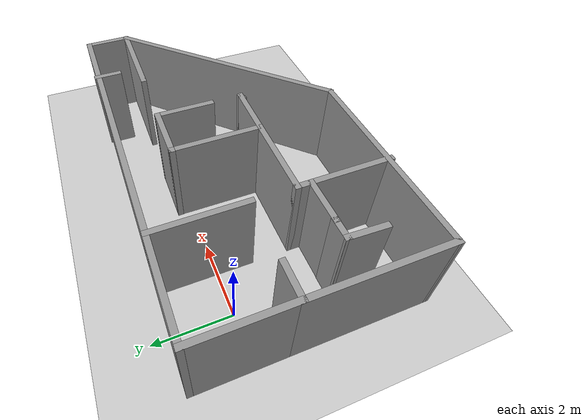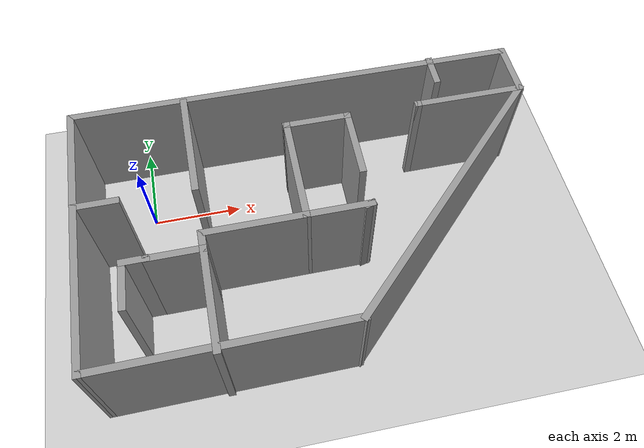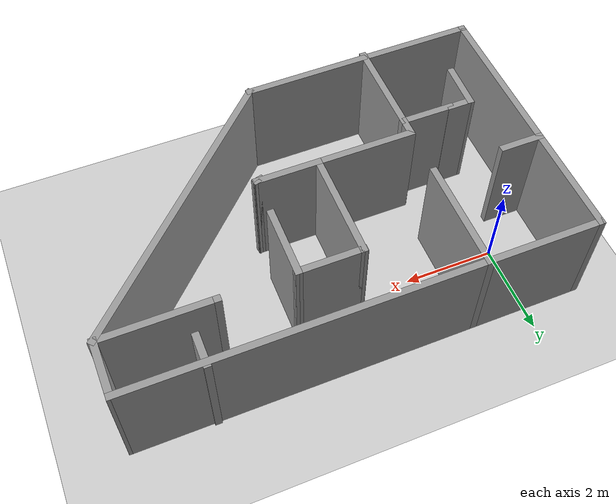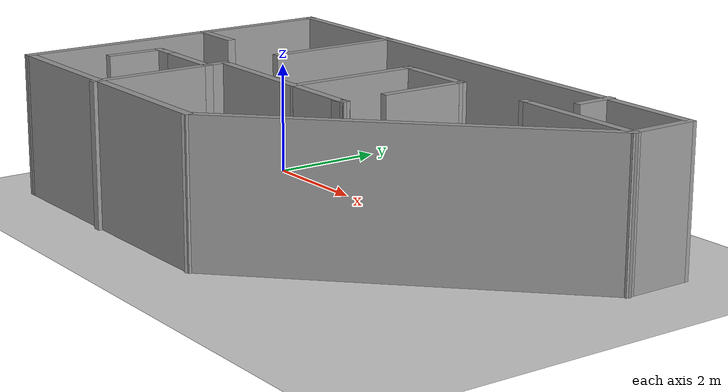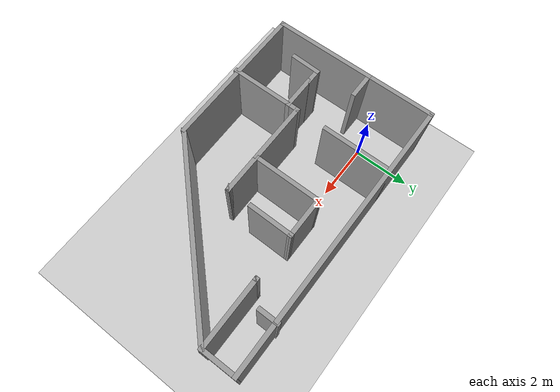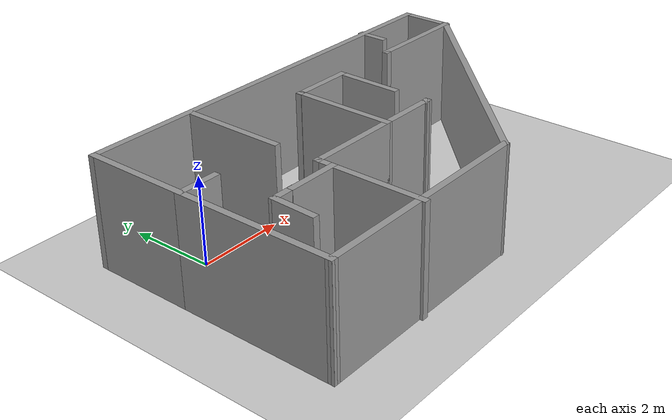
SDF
<sdf version="1.6">
 <world name="default">
  <light name="sun" type="directional">
   <pose>0 0 10 0 -0 0</pose>
   <diffuse>0.8 0.8 0.8 1</diffuse>
   <specular>0.2 0.2 0.2 1</specular>
   <attenuation>
    <range>1000</range>
    <constant>0.9</constant>
    <linear>0.01</linear>
    <quadratic>0.001</quadratic>
   </attenuation>
   <direction>-0.5 0.1 -0.9</direction>
  </light>
  <model name="ground_plane">
   <static>1</static>
   <link name="link">
    <collision name="collision">
     <geometry><plane><normal>0 0 1</normal><size>100 100</size></plane></geometry>
     <surface>
      <contact><collide_bitmask>65535</collide_bitmask></contact>
      <friction><ode><mu>100</mu><mu2>50</mu2></ode></friction>
     </surface>
    </collision>
    <visual name="visual">
     <cast_shadows>0</cast_shadows>
     <geometry><plane><normal>0 0 1</normal><size>100 100</size></plane></geometry>
     <material>
      <script><uri>file://media/materials/scripts/gazebo.material</uri><name>Gazebo/Grey</name></script>
     </material>
    </visual>
   </link>
  </model>
  <gravity>0 0 -9.8</gravity>
  <magnetic_field>6e-06 2.3e-05 -4.2e-05</magnetic_field>
  <atmosphere type="adiabatic"/>
  <physics name="default_physics" default="0" type="ode">
   <max_step_size>0.001</max_step_size>
   <real_time_factor>1</real_time_factor>
   <real_time_update_rate>1000</real_time_update_rate>
  </physics>
  <scene><ambient>0.4 0.4 0.4 1</ambient><background>0.7 0.7 0.7 1</background><shadows>1</shadows></scene>
  <audio><device>default</device></audio>
  <spherical_coordinates>
   <surface_model>EARTH_WGS84</surface_model>
   <latitude_deg>0</latitude_deg>
   <longitude_deg>0</longitude_deg>
   <elevation>0</elevation>
   <heading_deg>0</heading_deg>
  </spherical_coordinates>
  <model name="world11">
   <pose>3.70114 -1.46071 0 0 -0 0</pose>
   <link name="Wall_10">
    <collision name="Wall_10_Collision">
     <geometry><box><size>3.65 0.15 2.5</size></box></geometry>
     <pose>0 0 1.25 0 -0 0</pose>
    </collision>
    <visual name="Wall_10_Visual">
     <pose>0 0 1.25 0 -0 0</pose>
     <geometry><box><size>3.65 0.15 2.5</size></box></geometry>
     <material>
      <script><uri>file://media/materials/scripts/gazebo.material</uri><name>Gazebo/Grey</name></script>
      <ambient>1 1 1 1</ambient>
     </material>
     <meta><layer>0</layer></meta>
    </visual>
    <pose>-4.94506 -1.1719 0 0 -0 1.5708</pose>
   </link>
   <link name="Wall_11">
    <collision name="Wall_11_Collision">
     <geometry><box><size>1 0.15 2.5</size></box></geometry>
     <pose>0 0 1.25 0 -0 0</pose>
    </collision>
    <visual name="Wall_11_Visual">
     <pose>0 0 1.25 0 -0 0</pose>
     <geometry><box><size>1 0.15 2.5</size></box></geometry>
     <material>
      <script><uri>file://media/materials/scripts/gazebo.material</uri><name>Gazebo/Grey</name></script>
      <ambient>1 1 1 1</ambient>
     </material>
     <meta><layer>0</layer></meta>
    </visual>
    <pose>-4.52006 0.578104 0 0 -0 0</pose>
   </link>
   <link name="Wall_13">
    <collision name="Wall_13_Collision">
     <geometry><box><size>2.5 0.15 2.5</size></box></geometry>
     <pose>0 0 1.25 0 -0 0</pose>
    </collision>
    <visual name="Wall_13_Visual">
     <pose>0 0 1.25 0 -0 0</pose>
     <geometry><box><size>2.5 0.15 2.5</size></box></geometry>
     <material>
      <script><uri>file://media/materials/scripts/gazebo.material</uri><name>Gazebo/Grey</name></script>
      <ambient>1 1 1 1</ambient>
     </material>
     <meta><layer>0</layer></meta>
    </visual>
    <pose>-2.49506 1.7531 0 0 -0 1.5708</pose>
   </link>
   <link name="Wall_16">
    <collision name="Wall_16_Collision">
     <geometry><box><size>0.5 0.15 2.5</size></box></geometry>
     <pose>0 0 1.25 0 -0 0</pose>
    </collision>
    <visual name="Wall_16_Visual">
     <pose>0 0 1.25 0 -0 0</pose>
     <geometry><box><size>0.5 0.15 2.5</size></box></geometry>
     <material>
      <script><uri>file://media/materials/scripts/gazebo.material</uri><name>Gazebo/Grey</name></script>
      <ambient>1 1 1 1</ambient>
     </material>
     <meta><layer>0</layer></meta>
    </visual>
    <pose>-2.49506 -0.696896 0 0 -0 -1.5708</pose>
   </link>
   <link name="Wall_17">
    <collision name="Wall_17_Collision">
     <geometry><box><size>1.25042 0.15 2.5</size></box></geometry>
     <pose>0 0 1.25 0 -0 0</pose>
    </collision>
    <visual name="Wall_17_Visual">
     <pose>0 0 1.25 0 -0 0</pose>
     <geometry><box><size>1.25042 0.15 2.5</size></box></geometry>
     <material>
      <script><uri>file://media/materials/scripts/gazebo.material</uri><name>Gazebo/Grey</name></script>
      <ambient>1 1 1 1</ambient>
     </material>
     <meta><layer>0</layer></meta>
    </visual>
    <pose>-3.04506 -0.871896 0 0 -0 3.14159</pose>
   </link>
   <link name="Wall_2">
    <collision name="Wall_2_Collision">
     <geometry><box><size>2.5 0.15 2.5</size></box></geometry>
     <pose>0 0 1.25 0 -0 0</pose>
    </collision>
    <visual name="Wall_2_Visual">
     <pose>0 0 1.25 0 -0 0</pose>
     <geometry><box><size>2.5 0.15 2.5</size></box></geometry>
     <material>
      <script><uri>file://media/materials/scripts/gazebo.material</uri><name>Gazebo/Grey</name></script>
      <ambient>1 1 1 1</ambient>
     </material>
     <meta><layer>0</layer></meta>
    </visual>
    <pose>-4.94506 1.7531 0 0 -0 -1.5708</pose>
   </link>
   <link name="Wall_20">
    <collision name="Wall_20_Collision">
     <geometry><box><size>0.6181 0.15 2.5</size></box></geometry>
     <pose>0 0 1.25 0 -0 0</pose>
    </collision>
    <visual name="Wall_20_Visual">
     <pose>0 0 1.25 0 -0 0</pose>
     <geometry><box><size>0.6181 0.15 2.5</size></box></geometry>
     <material>
      <script><uri>file://media/materials/scripts/gazebo.material</uri><name>Gazebo/Grey</name></script>
      <ambient>1 1 1 1</ambient>
     </material>
     <meta><layer>0</layer></meta>
    </visual>
    <pose>-3.8291 -0.865721 0 0 -0 0.005927</pose>
   </link>
   <link name="Wall_22">
    <collision name="Wall_22_Collision">
     <geometry><box><size>2.25 0.15 2.5</size></box></geometry>
     <pose>0 0 1.25 0 -0 0</pose>
    </collision>
    <visual name="Wall_22_Visual">
     <pose>0 0 1.25 0 -0 0</pose>
     <geometry><box><size>2.25 0.15 2.5</size></box></geometry>
     <material>
      <script><uri>file://media/materials/scripts/gazebo.material</uri><name>Gazebo/Grey</name></script>
      <ambient>1 1 1 1</ambient>
     </material>
     <meta><layer>0</layer></meta>
    </visual>
    <pose>-1.44506 -0.521896 0 0 -0 0</pose>
   </link>
   <link name="Wall_25">
    <collision name="Wall_25_Collision">
     <geometry><box><size>0.16 0.15 2.5</size></box></geometry>
     <pose>0 0 1.25 0 -0 0</pose>
    </collision>
    <visual name="Wall_25_Visual">
     <pose>0 0 1.25 0 -0 0</pose>
     <geometry><box><size>0.16 0.15 2.5</size></box></geometry>
     <material>
      <script><uri>file://media/materials/scripts/gazebo.material</uri><name>Gazebo/Grey</name></script>
      <ambient>1 1 1 1</ambient>
     </material>
     <meta><layer>0</layer></meta>
    </visual>
    <pose>-0.390465 1.7828 0 0 -0 0</pose>
   </link>
   <link name="Wall_26">
    <collision name="Wall_26_Collision">
     <geometry><box><size>2.45471 0.15 2.5</size></box></geometry>
     <pose>0 0 1.25 0 -0 0</pose>
    </collision>
    <visual name="Wall_26_Visual">
     <pose>0 0 1.25 0 -0 0</pose>
     <geometry><box><size>2.45471 0.15 2.5</size></box></geometry>
     <material>
      <script><uri>file://media/materials/scripts/gazebo.material</uri><name>Gazebo/Grey</name></script>
      <ambient>1 1 1 1</ambient>
     </material>
     <meta><layer>0</layer></meta>
    </visual>
    <pose>-0.390262 0.63045 0 0 -0 -1.57496</pose>
   </link>
   <link name="Wall_28">
    <collision name="Wall_28_Collision">
     <geometry><box><size>1.5 0.15 2.5</size></box></geometry>
     <pose>0 0 1.25 0 -0 0</pose>
    </collision>
    <visual name="Wall_28_Visual">
     <pose>0 0 1.25 0 -0 0</pose>
     <geometry><box><size>1.5 0.15 2.5</size></box></geometry>
     <material>
      <script><uri>file://media/materials/scripts/gazebo.material</uri><name>Gazebo/Grey</name></script>
      <ambient>1 1 1 1</ambient>
     </material>
     <meta><layer>0</layer></meta>
    </visual>
    <pose>0.289535 1.7828 0 0 -0 0</pose>
   </link>
   <link name="Wall_30">
    <collision name="Wall_30_Collision">
     <geometry><box><size>0.15 0.15 2.5</size></box></geometry>
     <pose>0 0 1.25 0 -0 0</pose>
    </collision>
    <visual name="Wall_30_Visual">
     <pose>0 0 1.25 0 -0 0</pose>
     <geometry><box><size>0.15 0.15 2.5</size></box></geometry>
     <material>
      <script><uri>file://media/materials/scripts/gazebo.material</uri><name>Gazebo/Grey</name></script>
      <ambient>1 1 1 1</ambient>
     </material>
     <meta><layer>0</layer></meta>
    </visual>
    <pose>2.56453 1.7828 0 0 -0 0</pose>
   </link>
   <link name="Wall_31">
    <collision name="Wall_31_Collision">
     <geometry><box><size>2.5 0.15 2.5</size></box></geometry>
     <pose>0 0 1.25 0 -0 0</pose>
    </collision>
    <visual name="Wall_31_Visual">
     <pose>0 0 1.25 0 -0 0</pose>
     <geometry><box><size>2.5 0.15 2.5</size></box></geometry>
     <material>
      <script><uri>file://media/materials/scripts/gazebo.material</uri><name>Gazebo/Grey</name></script>
      <ambient>1 1 1 1</ambient>
     </material>
     <meta><layer>0</layer></meta>
    </visual>
    <pose>3.73954 1.7828 0 0 -0 0</pose>
   </link>
   <link name="Wall_37">
    <collision name="Wall_37_Collision">
     <geometry><box><size>0.75 0.15 2.5</size></box></geometry>
     <pose>0 0 1.25 0 -0 0</pose>
    </collision>
    <visual name="Wall_37_Visual">
     <pose>0 0 1.25 0 -0 0</pose>
     <geometry><box><size>0.75 0.15 2.5</size></box></geometry>
     <material>
      <script><uri>file://media/materials/scripts/gazebo.material</uri><name>Gazebo/Grey</name></script>
      <ambient>1 1 1 1</ambient>
     </material>
     <meta><layer>0</layer></meta>
    </visual>
    <pose>3.16206 2.6719 0 0 -0 1.5708</pose>
   </link>
   <link name="Wall_39">
    <collision name="Wall_39_Collision">
     <geometry><box><size>1.5 0.15 2.5</size></box></geometry>
     <pose>0 0 1.25 0 -0 0</pose>
    </collision>
    <visual name="Wall_39_Visual">
     <pose>0 0 1.25 0 -0 0</pose>
     <geometry><box><size>1.5 0.15 2.5</size></box></geometry>
     <material>
      <script><uri>file://media/materials/scripts/gazebo.material</uri><name>Gazebo/Grey</name></script>
      <ambient>1 1 1 1</ambient>
     </material>
     <meta><layer>0</layer></meta>
    </visual>
    <pose>0.279942 -0.521896 0 0 -0 0</pose>
   </link>
   <link name="Wall_4">
    <collision name="Wall_4_Collision">
     <geometry><box><size>10 0.15 2.5</size></box></geometry>
     <pose>0 0 1.25 0 -0 0</pose>
    </collision>
    <visual name="Wall_4_Visual">
     <pose>0 0 1.25 0 -0 0</pose>
     <geometry><box><size>10 0.15 2.5</size></box></geometry>
     <material>
      <script><uri>file://media/materials/scripts/gazebo.material</uri><name>Gazebo/Grey</name></script>
      <ambient>1 1 1 1</ambient>
     </material>
     <meta><layer>0</layer></meta>
    </visual>
    <pose>-0.020058 2.9281 0 0 -0 0</pose>
   </link>
   <link name="Wall_41">
    <collision name="Wall_41_Collision">
     <geometry><box><size>1.60472 0.15 2.5</size></box></geometry>
     <pose>0 0 1.25 0 -0 0</pose>
    </collision>
    <visual name="Wall_41_Visual">
     <pose>0 0 1.25 0 -0 0</pose>
     <geometry><box><size>1.60472 0.15 2.5</size></box></geometry>
     <material>
      <script><uri>file://media/materials/scripts/gazebo.material</uri><name>Gazebo/Grey</name></script>
      <ambient>1 1 1 1</ambient>
     </material>
     <meta><layer>0</layer></meta>
    </visual>
    <pose>0.959739 1.05545 0 0 -0 1.5642</pose>
   </link>
   <link name="Wall_43">
    <collision name="Wall_43_Collision">
     <geometry><box><size>6.75 0.15 2.5</size></box></geometry>
     <pose>0 0 1.25 0 -0 0</pose>
    </collision>
    <visual name="Wall_43_Visual">
     <pose>0 0 1.25 0 -0 0</pose>
     <geometry><box><size>6.75 0.15 2.5</size></box></geometry>
     <material>
      <script><uri>file://media/materials/scripts/gazebo.material</uri><name>Gazebo/Grey</name></script>
      <ambient>1 1 1 1</ambient>
     </material>
     <meta><layer>0</layer></meta>
    </visual>
    <pose>2.58108 -0.550657 0 0 -0 -2.35619</pose>
   </link>
   <link name="Wall_45">
    <collision name="Wall_45_Collision">
     <geometry><box><size>0.15 0.15 2.5</size></box></geometry>
     <pose>0 0 1.25 0 -0 0</pose>
    </collision>
    <visual name="Wall_45_Visual">
     <pose>0 0 1.25 0 -0 0</pose>
     <geometry><box><size>0.15 0.15 2.5</size></box></geometry>
     <material>
      <script><uri>file://media/materials/scripts/gazebo.material</uri><name>Gazebo/Grey</name></script>
      <ambient>1 1 1 1</ambient>
     </material>
     <meta><layer>0</layer></meta>
    </visual>
    <pose>0.954942 -0.521896 0 0 -0 0</pose>
   </link>
   <link name="Wall_46">
    <collision name="Wall_46_Collision">
     <geometry><box><size>0.25 0.15 2.5</size></box></geometry>
     <pose>0 0 1.25 0 -0 0</pose>
    </collision>
    <visual name="Wall_46_Visual">
     <pose>0 0 1.25 0 -0 0</pose>
     <geometry><box><size>0.25 0.15 2.5</size></box></geometry>
     <material>
      <script><uri>file://media/materials/scripts/gazebo.material</uri><name>Gazebo/Grey</name></script>
      <ambient>1 1 1 1</ambient>
     </material>
     <meta><layer>0</layer></meta>
    </visual>
    <pose>0.906646 -0.534837 0 0 -0 -2.87979</pose>
   </link>
   <link name="Wall_48">
    <collision name="Wall_48_Collision">
     <geometry><box><size>1.29535 0.15 2.5</size></box></geometry>
     <pose>0 0 1.25 0 -0 0</pose>
    </collision>
    <visual name="Wall_48_Visual">
     <pose>0 0 1.25 0 -0 0</pose>
     <geometry><box><size>1.29535 0.15 2.5</size></box></geometry>
     <material>
      <script><uri>file://media/materials/scripts/gazebo.material</uri><name>Gazebo/Grey</name></script>
      <ambient>1 1 1 1</ambient>
     </material>
     <meta><layer>0</layer></meta>
    </visual>
    <pose>4.90974 2.35545 0 0 -0 -1.56242</pose>
   </link>
   <link name="Wall_50">
    <collision name="Wall_50_Collision">
     <geometry><box><size>5.34283 0.15 2.5</size></box></geometry>
     <pose>0 0 1.25 0 -0 0</pose>
    </collision>
    <visual name="Wall_50_Visual">
     <pose>0 0 1.25 0 -0 0</pose>
     <geometry><box><size>5.34283 0.15 2.5</size></box></geometry>
     <material>
      <script><uri>file://media/materials/scripts/gazebo.material</uri><name>Gazebo/Grey</name></script>
      <ambient>1 1 1 1</ambient>
     </material>
     <meta><layer>0</layer></meta>
    </visual>
    <pose>-2.34871 -2.903 0 0 -0 -3.13432</pose>
   </link>
   <link name="Wall_55">
    <collision name="Wall_55_Collision">
     <geometry><box><size>1.08009 0.15 2.5</size></box></geometry>
     <pose>0 0 1.25 0 -0 0</pose>
    </collision>
    <visual name="Wall_55_Visual">
     <pose>0 0 1.25 0 -0 0</pose>
     <geometry><box><size>1.08009 0.15 2.5</size></box></geometry>
     <material>
      <script><uri>file://media/materials/scripts/gazebo.material</uri><name>Gazebo/Grey</name></script>
      <ambient>1 1 1 1</ambient>
     </material>
     <meta><layer>0</layer></meta>
    </visual>
    <pose>-4.08081 -1.33182 0 0 -0 1.53282</pose>
   </link>
   <link name="Wall_57">
    <collision name="Wall_57_Collision">
     <geometry><box><size>2.25 0.15 2.5</size></box></geometry>
     <pose>0 0 1.25 0 -0 0</pose>
    </collision>
    <visual name="Wall_57_Visual">
     <pose>0 0 1.25 0 -0 0</pose>
     <geometry><box><size>2.25 0.15 2.5</size></box></geometry>
     <material>
      <script><uri>file://media/materials/scripts/gazebo.material</uri><name>Gazebo/Grey</name></script>
      <ambient>1 1 1 1</ambient>
     </material>
     <meta><layer>0</layer></meta>
    </visual>
    <pose>-2.49506 -1.9219 0 0 -0 -1.5708</pose>
   </link>
   <static>1</static>
  </model>
 </world>
</sdf>
